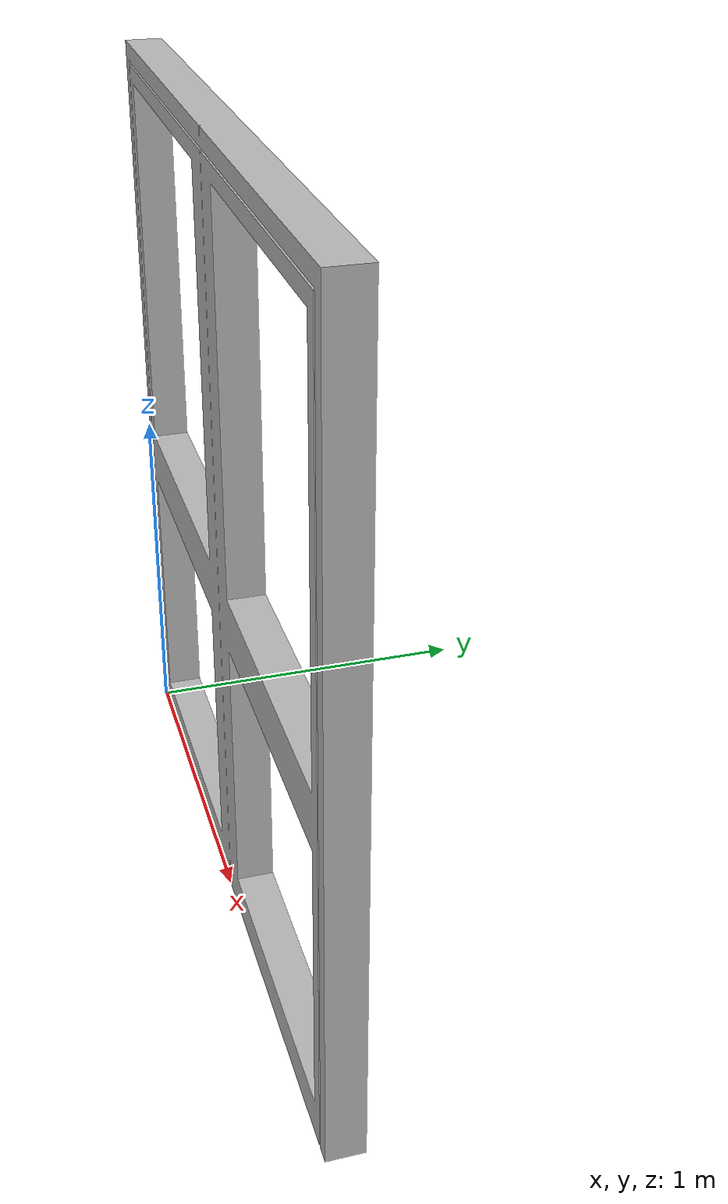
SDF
<?xml version="1.0"?>
<sdf version="1.5">
<model name="dvere_vchodove_2">
	<pose>0 0 0 0 0 0</pose>
	<static>true</static>
	<link name="dvere_vchodove_2_collision">
		<collision name="dvere_vchodove_2_collision">
		<geometry>
			<mesh>
				<uri>model://dvere_vchodove_2/meshes/model.dae</uri>
				<scale> 0.9 1 1 </scale>
			</mesh>
		</geometry>
		</collision>
	<visual name="dvere_vchodove_2_mesh">
	<cast_shadows>false</cast_shadows>
		<geometry>
			<mesh>
				<uri> model://dvere_vchodove_2/meshes/model.dae</uri>
				<scale> 0.9 1 1 </scale>
			</mesh>
		</geometry>
		<material>
		<script>
			<uri> model://dvere_vchodove_2/material/scripts</uri>
			<uri> model://dvere_vchodove_2/material/textures</uri>
			<name>dvere_vchodove_2/Diffuse</name>
		</script>
		</material>

	</visual>
</link>
</model>
</sdf>
